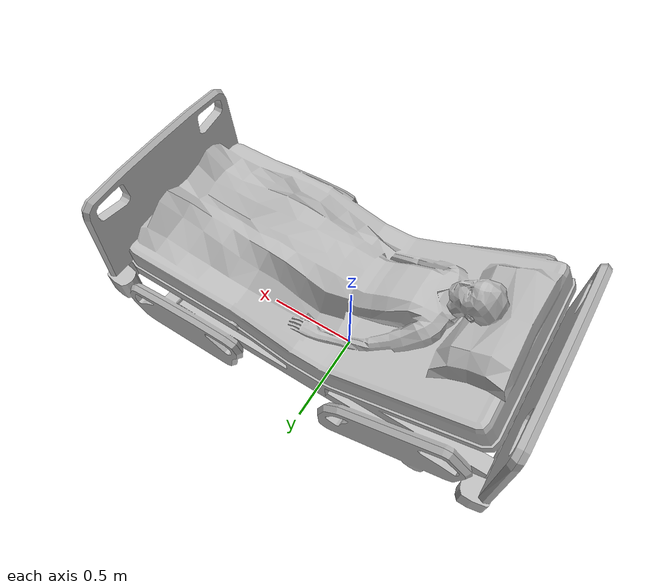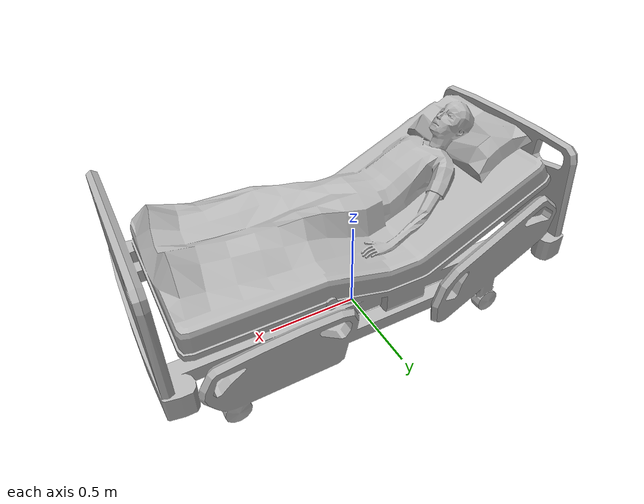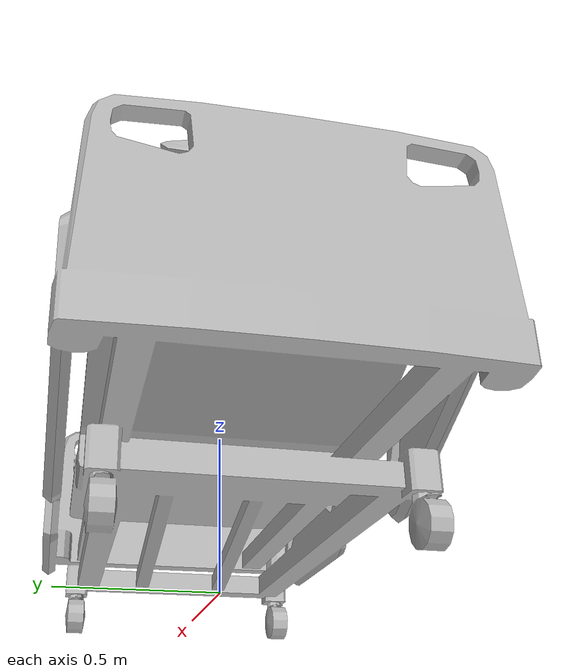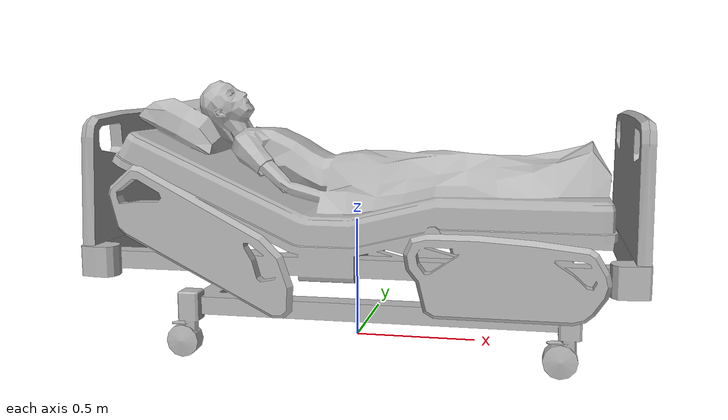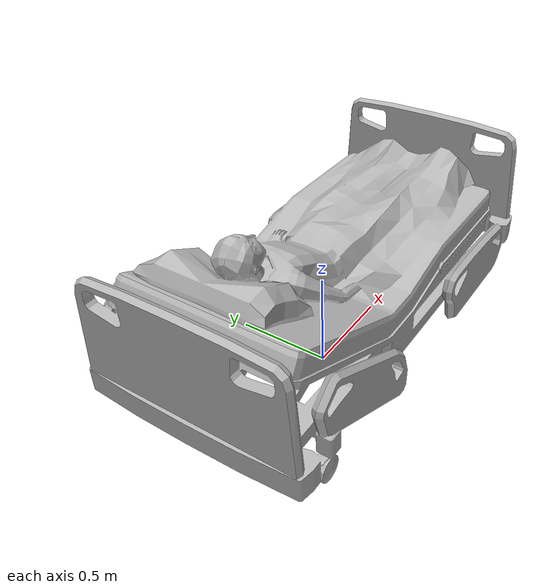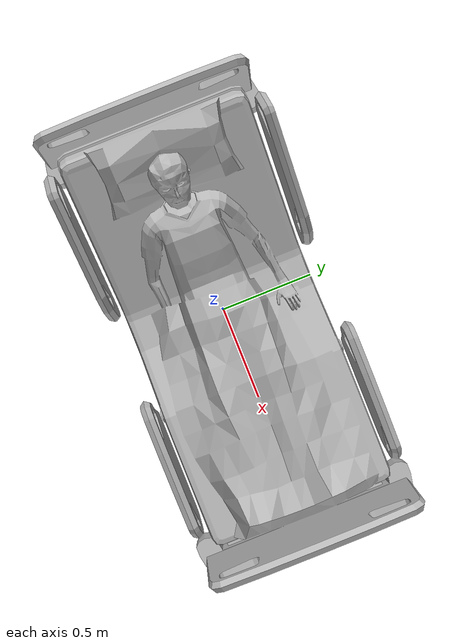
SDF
<?xml version="1.0" ?>
<sdf version="1.5">
  <model name="MalePatientBed">
    <link name="link">
      <pose>0 0 0 0 0 0</pose>

        <visual name="visual">
          <geometry>
            <mesh><uri>model://MalePatientBed/meshes/MalePatientBed.obj</uri></mesh>
          </geometry>
        </visual>

        <collision name="collision">
          <geometry>
            <mesh><uri>model://MalePatientBed/meshes/MalePatientBed.obj</uri></mesh>
          </geometry>
        </collision>

    </link>
  </model>
</sdf>
